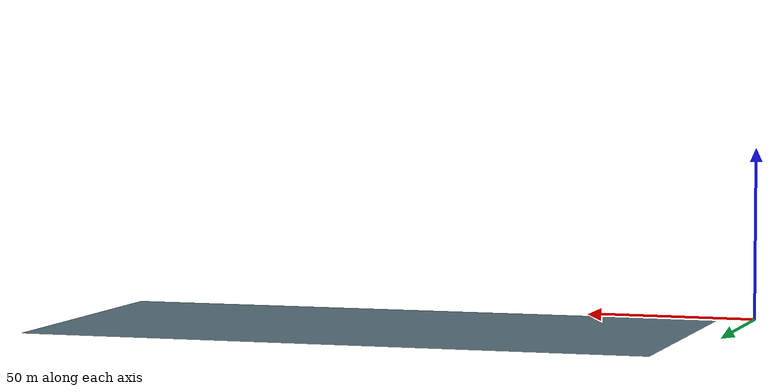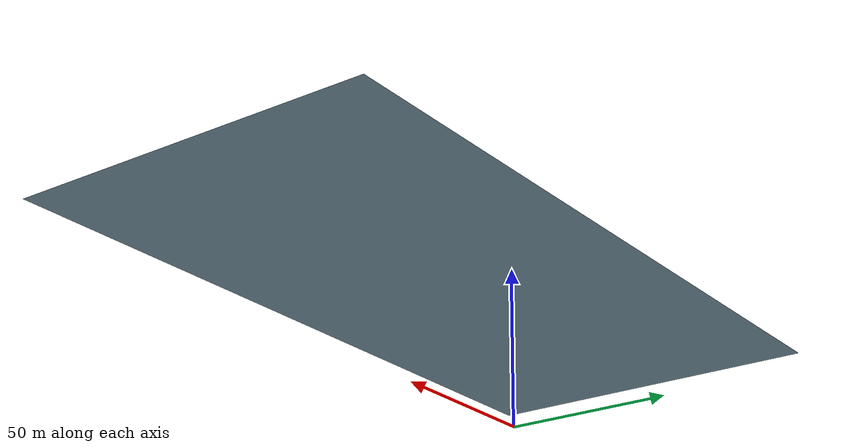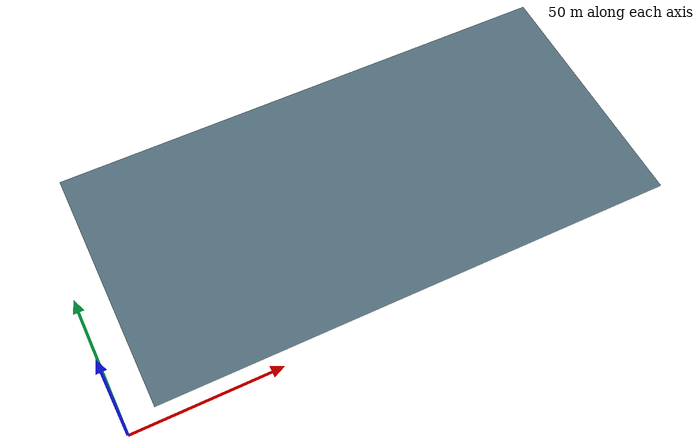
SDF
<?xml version="1.0"?>
<sdf version="1.9">
  <model name="aero_sense_flood_water">
    <static>true</static>
    <link name="link">
      <visual name="visual">
        <cast_shadows>false</cast_shadows>
        <transparency>0.25</transparency>
        <geometry><mesh><uri>model://aero_sense_flood_water/meshes/water.obj</uri></mesh></geometry>
        <material>
          <ambient>0.10 0.20 0.26 1</ambient>
          <diffuse>0.13 0.27 0.34 1</diffuse>
          <specular>0.5 0.55 0.6 1</specular>
          <pbr><metal><roughness>0.15</roughness><metalness>0</metalness></metal></pbr>
        </material>
        <plugin filename="gz-sim-thermal-system" name="gz::sim::systems::Thermal">
          <temperature>291</temperature>
        </plugin>
      </visual>
    </link>
  </model>
</sdf>
